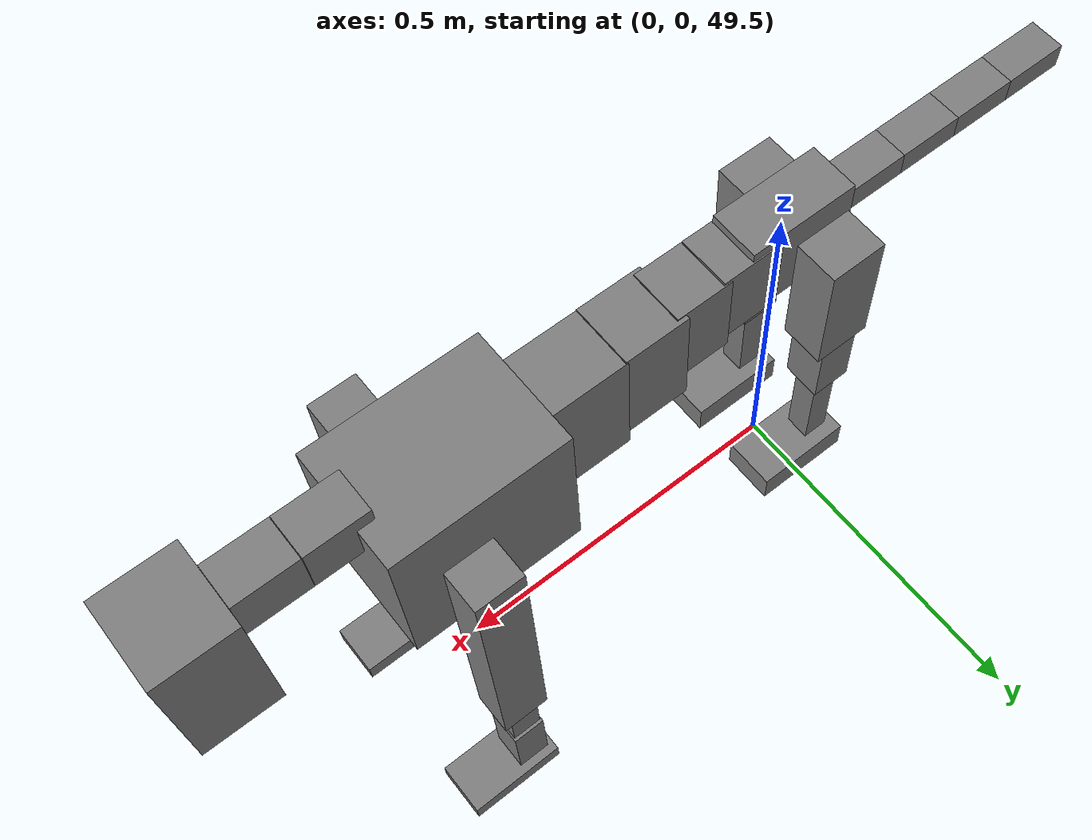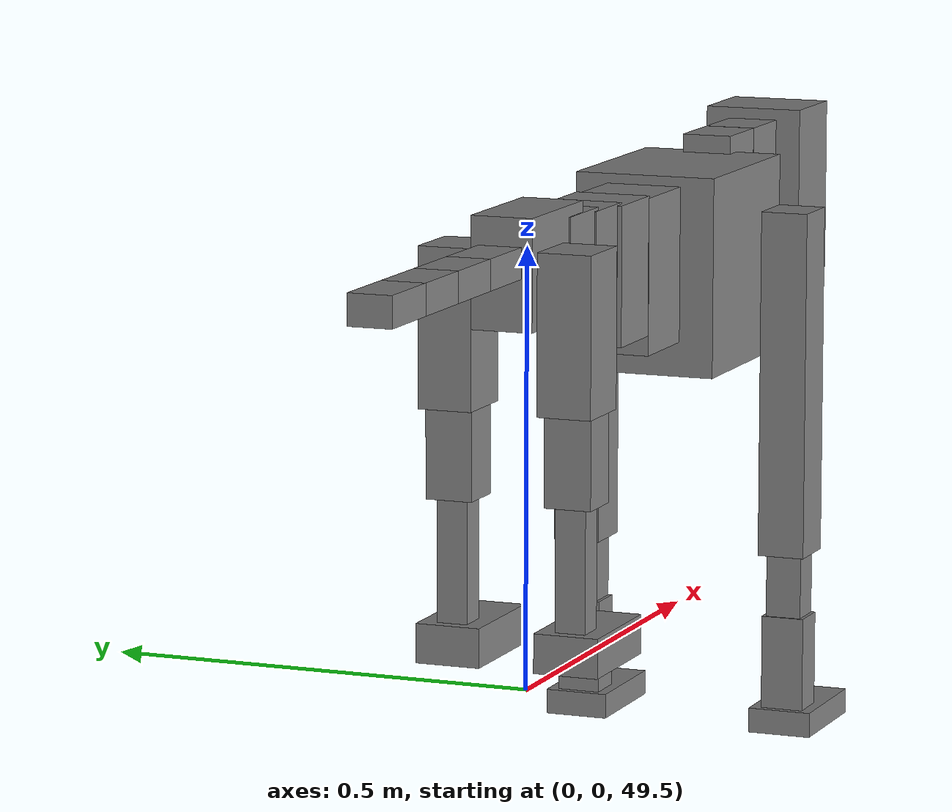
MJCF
<mujoco model="dog">

    <default>
        <joint armature="0.02" stiffness="1" damping="0.2" limited="true"/>
        <geom condim="3" friction="1 0.05 0.05" margin="0.01"/>
        <motor ctrllimited="true" ctrlrange="-1.0 1.0" forcelimited="true" gear="50"/>
    </default>

    <compiler inertiafromgeom="true" angle="radian"/>

    <option timestep="0.016" iterations="50" tolerance="1e-10" solver="Newton" jacobian="dense" cone="pyramidal"/>

    <size nconmax="20000" njmax="60000" nstack="5000000"/>
    <visual>
        <map force="0.1" zfar="30"/>
        <rgba haze="0.15 0.25 0.35 1"/>
        <quality shadowsize="2048"/>
        <global offwidth="800" offheight="800"/>
    </visual>

    <asset>
        <texture type="skybox" builtin="gradient" rgb1="0.3 0.5 0.7" rgb2="0 0 0" width="512" height="512"/>
        <texture name="texplane" type="2d" builtin="checker" rgb1=".2 .3 .4" rgb2=".1 0.15 0.2" width="512" height="512"
                 mark="cross" markrgb=".8 .8 .8"/>
        <texture name="texgeom" type="cube" builtin="flat" mark="cross" width="127" height="1278" rgb1="0.8 0.6 0.4"
                 rgb2="0.8 0.6 0.4" markrgb="1 1 1" random="0.01"/>

        <material name="matplane" reflectance="0.3" texture="texplane" texrepeat="1 1" texuniform="true"/>
        <material name="matgeom" texture="texgeom" texuniform="true" rgba="0.8 0.6 .4 1"/>
    </asset>

    <worldbody>
        <geom name="floor" pos="0 0 0" size="0 0 .25" type="plane" material="matplane" condim="3"/>

        <light directional="false" diffuse=".2 .2 .2" specular="0 0 0" pos="0 0 5" dir="0 0 -1" castshadow="false"/>
        <light mode="targetbodycom" target="torso" directional="false" diffuse=".8 .8 .8" specular="0.3 0.3 0.3"
               pos="0 0 4.0" dir="0 0 -1"/>

        <body name="root" pos="0 0 50">
            <freejoint name="root_1"/>
            <geom type="box" pos="0 0 -0.02" size="0.0774  0.0358  0.063" density="2030"/>

            <body name="spine1" pos="0.054 0 0">
                <joint name="spine1_y" axis="0 1 0" range="0 0.7" limited="true"/>
                <geom type="box" pos="0.02375 0 -0.03" size="0.04375  0.0375  0.05985" density="2030"/>

                <body name="spine2" pos="0.0612 0 0">
                    <joint name="spine2_y" axis="0 1 0" range="-0.15 0.15" limited="true"/>
                    <geom type="box" pos="0.03555  0  -0.04" size="0.04055  0.039  0.06615" density="2030"/>

                    <body name="spine3" pos="0.0730 0 0">
                        <joint name="spine3_y" axis="0 1 0" range="-0.15 0.15" limited="true"/>
                        <geom type="box" pos="0.03555  0  -0.057" size="0.04555  0.0445  0.081" density="2030"/>

                        <body name="spine4" pos="0.0780 0 0">
                            <joint name="spine4_y" axis="0 1 0" range="-0.15 0.15" limited="true"/>
                            <geom type="box" pos="0.05265  0  -0.07" size="0.05265  0.045  0.09135" density="2030"/>

                            <body name="torso" pos="0.1082 0 0">
                                <joint name="torso_y" axis="0 1 0" range="-0.15 0.15" limited="true"/>
                                <geom type="box" pos="0.11925  0  -0.085" size="0.11925  0.085  0.11745"
                                      density="2030"/>

                                <body name="neck1" pos="0.2160  0   0.0180">
                                    <joint name="neck1_y" axis="0 1 0" range="-1.2  -1" limited="true"/>
                                    <geom type="box" pos="0.0423  0  0" size="0.0423  0.03  0.036" density="2325"/>

                                    <body name="neck2" pos="0.0853  0  0">
                                        <joint name="neck2_y" axis="0 1 0" range="0.1  0" limited="true"/>
                                        <geom type="box" pos="0.0423  0  0" size="0.0423  0.03  0.036" density="2325"/>

                                        <body name="head" pos="0.0853  0  0">
                                            <joint name="head_y" axis="0 1 0" range="-0.3  -0.2" limited="true"/>
                                            <geom type="box" pos="0.0531  0  -0.055" size="0.0531  0.06  0.1044"
                                                  density="4030"/>

                                        </body>
                                    </body>
                                </body>

                                <body name="front_shoulder" pos="0.156  0   -0.0480">
                                    <joint name="front_shoulder_y" axis="0 1 0" range="-1 1.5" limited="true"/>
                                    <geom type="box" pos="0 0.13 -0.1802" size="0.0330  0.0282  0.2069" density="1158"/>
                                    <geom type="box" pos="0 -0.13 -0.1802" size="0.0330  0.0282  0.2069"
                                          density="1158"/>

                                    <body name="front_elbow" pos="0  0  -0.3605">
                                        <joint name="front_elbow_y" axis="0 1 0" range="-2 0" limited="true"/>
                                        <geom type="box" pos="0 0.13 -0.0578" size="0.0208  0.0213  0.0578"
                                              density="1081"/>
                                        <geom type="box" pos="0 -0.13 -0.0578" size="0.0208  0.0213  0.0578"
                                              density="1081"/>

                                        <body name="front_wrist" pos="0  0  -0.1156">
                                            <joint name="front_wrist_y" axis="0 1 0" range="-0.2 0" limited="true"/>
                                            <geom type="box" pos="0 0.13 -0.0569" size="0.0231  0.0257  0.0701"
                                                  density="1664"/>
                                            <geom type="box" pos="0 -0.13 -0.0569" size="0.0231  0.0257  0.0701"
                                                  density="1664"/>

                                            <body name="front_finger_end" pos="0  0  -0.1138">
                                                <joint name="front_finger_y" axis="0 1 0" range="-0.4 1"
                                                       limited="true"/>
                                                <geom type="box" pos="0.0382  0.13  0.0002"
                                                      size="0.0699  0.0382  0.0148" density="1515"/>
                                                <geom type="box" pos="0.0382  -0.13  0.0002"
                                                      size="0.0699  0.0382  0.0148" density="1515"/>

                                            </body>

                                        </body>
                                    </body>
                                </body>

                            </body>
                        </body>
                    </body>
                </body>
            </body>

            <body name="back_hip" pos="-0.03 0 -0.018">
                <joint name="back_hip_y" axis="0 1 0" range="-1.5 0.3" limited="true"/>
                <geom type="box" pos="0 0.07 -0.0679" size="0.0399  0.0313  0.0907" density="1154"/>
                <geom type="box" pos="0 -0.07 -0.0679" size="0.0399  0.0313  0.0907" density="1154"/>

                <body name="back_knee" pos="0  0  -0.1358">
                    <joint name="back_knee_y" axis="0 1 0" range="0 2.8" limited="true"/>
                    <geom type="box" pos="0 0.07 -0.0551" size="0.0277  0.0273  0.0706" density="1227"/>
                    <geom type="box" pos="0 -0.07 -0.0551" size="0.0277  0.0273  0.0706" density="1227"/>

                    <body name="back_ankle" pos="0  0  -0.1101">
                        <joint name="back_ankle_y" axis="0 1 0" range="-2.2 0" limited="true"/>
                        <geom type="box" pos="0 0.07 -0.0857" size="0.0177  0.0177  0.0970" density="1284"/>
                        <geom type="box" pos="0 -0.07 -0.0857" size="0.0177  0.0177  0.0970" density="1284"/>

                        <body name="back_toe_end" pos="0  0  -0.1714">
                            <joint name="back_toe_y" axis="0 1 0" range="-0.4 1" limited="true"/>
                            <geom type="box" pos="0.0377  0.07  -0.0075" size="0.0690  0.0377  0.0225" density="1515"/>
                            <geom type="box" pos="0.0377  -0.07  -0.0075" size="0.0690  0.0377  0.0225" density="1515"/>

                        </body>
                    </body>
                </body>
            </body>

            <body name="tail1" pos="-0.074 0 -0.006">
                <joint name="tail1_y" axis="0 1 0" range="-0.2 0.2" limited="true"/>
                <geom type="box" pos="-0.0536  0  0" size="0.045  0.025  0.0175" density="1587"/>

                <body name="tail2" pos="-0.09 0 0">
                    <joint name="tail2_y" axis="0 1 0" range="-0.2 0.2" limited="true"/>
                    <geom type="box" pos="-0.0536  0  0" size="0.045  0.025  0.0175" density="1587"/>

                    <body name="tail3" pos="-0.09 0 0">
                        <joint name="tail3_y" axis="0 1 0" range="-0.2 0.2" limited="true"/>
                        <geom type="box" pos="-0.0536  0  0" size="0.045  0.025  0.0175" density="1587"/>

                        <body name="tail4" pos="-0.09 0 0">
                            <joint name="tail4_y" axis="0 1 0" range="-0.2 0.2" limited="true"/>
                            <geom type="box" pos="-0.0536  0  0" size="0.045  0.025  0.0175" density="1587"/>

                        </body>
                    </body>
                </body>
            </body>
        </body>
    </worldbody>

    <actuator>
        <motor joint="spine1_y" forcerange="-150 150     "/>
        <motor joint="spine2_y" forcerange="-150 150     "/>
        <motor joint="spine3_y" forcerange="-150 150     "/>
        <motor joint="spine4_y" forcerange="-150 150     "/>
        <motor joint="torso_y" forcerange="-150 150     "/>
        <motor joint="neck1_y" forcerange="-100 100       "/>
        <motor joint="neck2_y" forcerange="-100 100       "/>
        <motor joint="head_y" forcerange="-150 150       "/>
        <motor joint="front_shoulder_y" forcerange="-137.74 150.17"/>
        <motor joint="front_elbow_y" forcerange="-149.16 105.57"/>
        <motor joint="front_wrist_y" forcerange="-119.20 86.25"/>
        <motor joint="front_finger_y" forcerange="-88.14 75.34"/>
        <motor joint="back_hip_y" forcerange="-320.64 296.86"/>
        <motor joint="back_knee_y" forcerange="-231.51 365.91"/>
        <motor joint="back_angle_y" forcerange="-50.63 132.88"/>
        <motor joint="back_toe_y" forcerange="-133.74 87.53"/>
        <motor joint="tail1_y" forcerange="-50 50     "/>
        <motor joint="tail2_y" forcerange="-50 50     "/>
        <motor joint="tail3_y" forcerange="-50 50     "/>
        <motor joint="tail4_y" forcerange="-50 50     "/>
    </actuator>
</mujoco>
